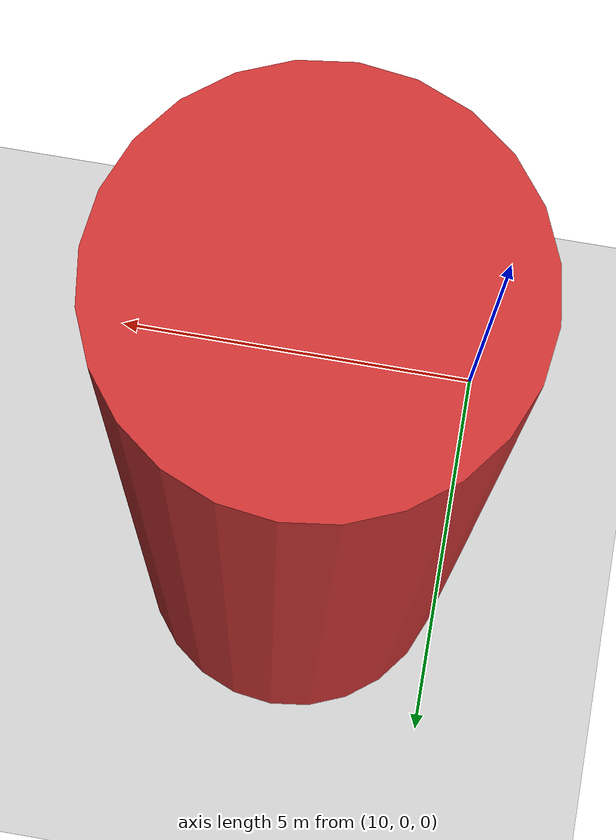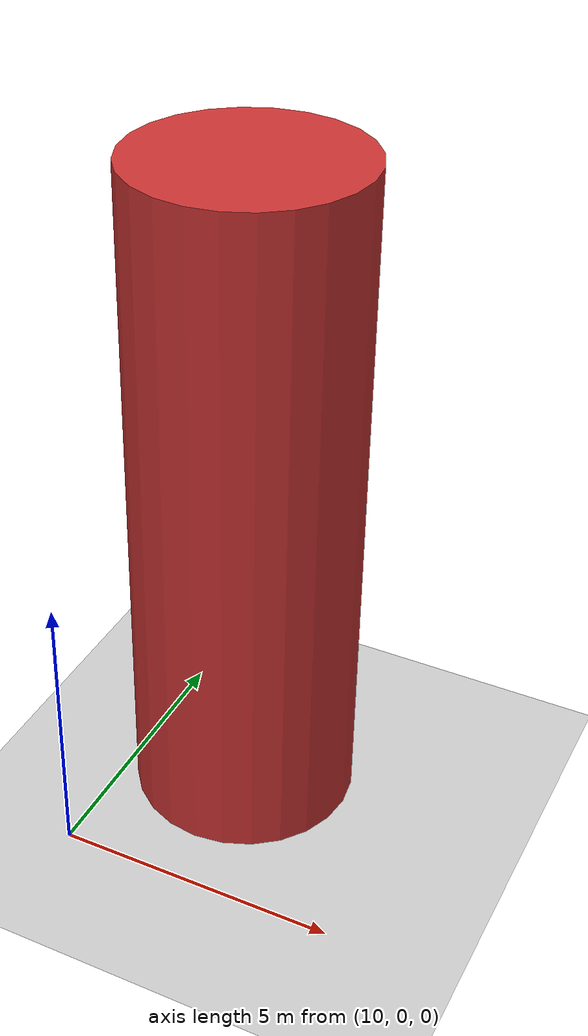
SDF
<?xml version="1.0" ?>
<sdf version="1.8">
  <world name="world_offshore_wind_vtol_survey">
    <!-- Physics Engine Configuration -->
    <physics name="default_physics" default="true" type="dart">
      <max_step_size>0.001</max_step_size>
      <real_time_factor>1.0</real_time_factor>
      <real_time_update_rate>1000</real_time_update_rate>
    </physics>
    <!-- Environmental Wind Plugin -->
    <plugin name="gz::sim::systems::Wind" filename="gz-sim-wind-system">
      <horizontal>
        <magnitude>6.50</magnitude>
        <direction>6.00 2.50 0</direction>
      </horizontal>
    </plugin>
    <!-- Sun Light -->
    <light type="directional" name="sun">
      <cast_shadows>true</cast_shadows>
      <pose>0 0 10 0 0 0</pose>
      <diffuse>0.8 0.8 0.8 1</diffuse>
      <direction>-0.5 0.1 -0.9</direction>
    </light>
    <!-- Ground Plane -->
    <model name="ground_plane">
      <static>true</static>
      <link name="link">
        <collision name="collision">
          <geometry><plane><normal>0 0 1</normal><size>100 100</size></plane></geometry>
        </collision>
        <visual name="visual">
          <geometry><plane><normal>0 0 1</normal><size>100 100</size></plane></geometry>
          <material><ambient>0.8 0.8 0.8 1</ambient></material>
        </visual>
      </link>
    </model>
    <!-- Obstacle: obstacle_0_cylinder -->
    <model name="obstacle_0_cylinder">
      <static>true</static>
      <pose>12.00 3.00 6.00 0 0 0</pose>
      <link name="link">
        <collision name="collision">
          <geometry>
            <cylinder><radius>2.0</radius><length>12.0</length></cylinder>
          </geometry>
        </collision>
        <visual name="visual">
          <geometry>
            <cylinder><radius>2.0</radius><length>12.0</length></cylinder>
          </geometry>
          <material><ambient>0.8 0.2 0.2 1</ambient></material>
        </visual>
      </link>
    </model>
  </world>
</sdf>
